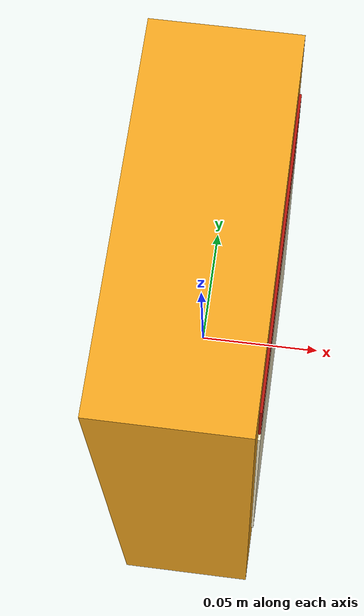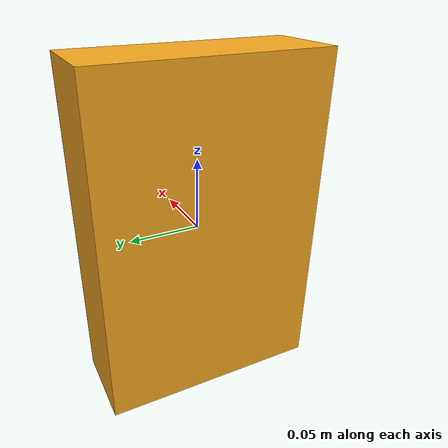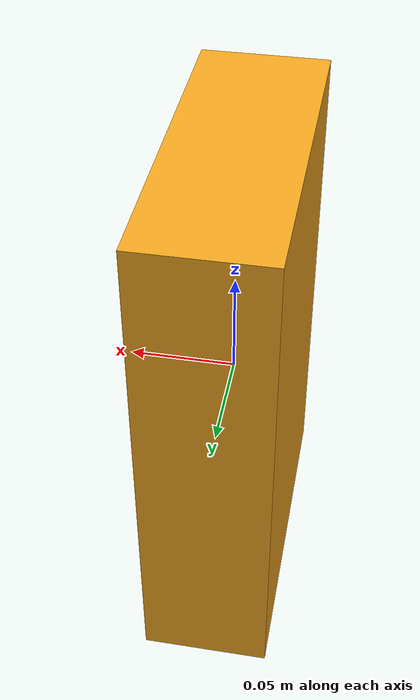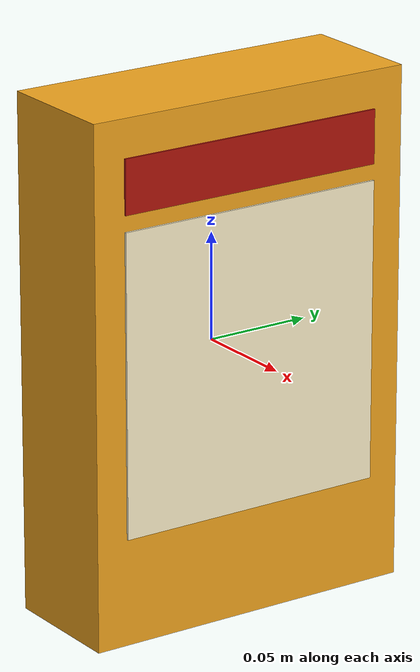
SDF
<?xml version="1.0"?>
<sdf version="1.7">
  <model name="cereal_box">
    <static>false</static>
    <link name="box">
      <inertial>
        <mass>0.35</mass>
        <inertia><ixx>0.002426667</ixx><iyy>0.001785</iyy><izz>0.000851667</izz><ixy>0</ixy><ixz>0</ixz><iyz>0</iyz></inertia>
      </inertial>
      <collision name="carton_collision">
        <geometry><box><size>0.06 0.16 0.24</size></box></geometry>
        <surface><friction><ode><mu>0.6</mu><mu2>0.6</mu2></ode></friction></surface>
      </collision>
      <visual name="carton">
        <geometry><box><size>0.06 0.16 0.24</size></box></geometry>
        <material><ambient>0.9 0.55 0.08 1</ambient><diffuse>0.95 0.65 0.12 1</diffuse></material>
      </visual>
      <visual name="front_label">
        <pose>0.0306 0 0 0 0 0</pose>
        <geometry><box><size>0.001 0.13 0.14</size></box></geometry>
        <material><ambient>0.95 0.9 0.72 1</ambient><diffuse>1 0.95 0.8 1</diffuse></material>
      </visual>
      <visual name="front_band">
        <pose>0.0306 0 0.09 0 0 0</pose>
        <geometry><box><size>0.001 0.13 0.025</size></box></geometry>
        <material><ambient>0.5 0.06 0.03 1</ambient><diffuse>0.7 0.08 0.04 1</diffuse></material>
      </visual>
    </link>
  </model>
</sdf>
